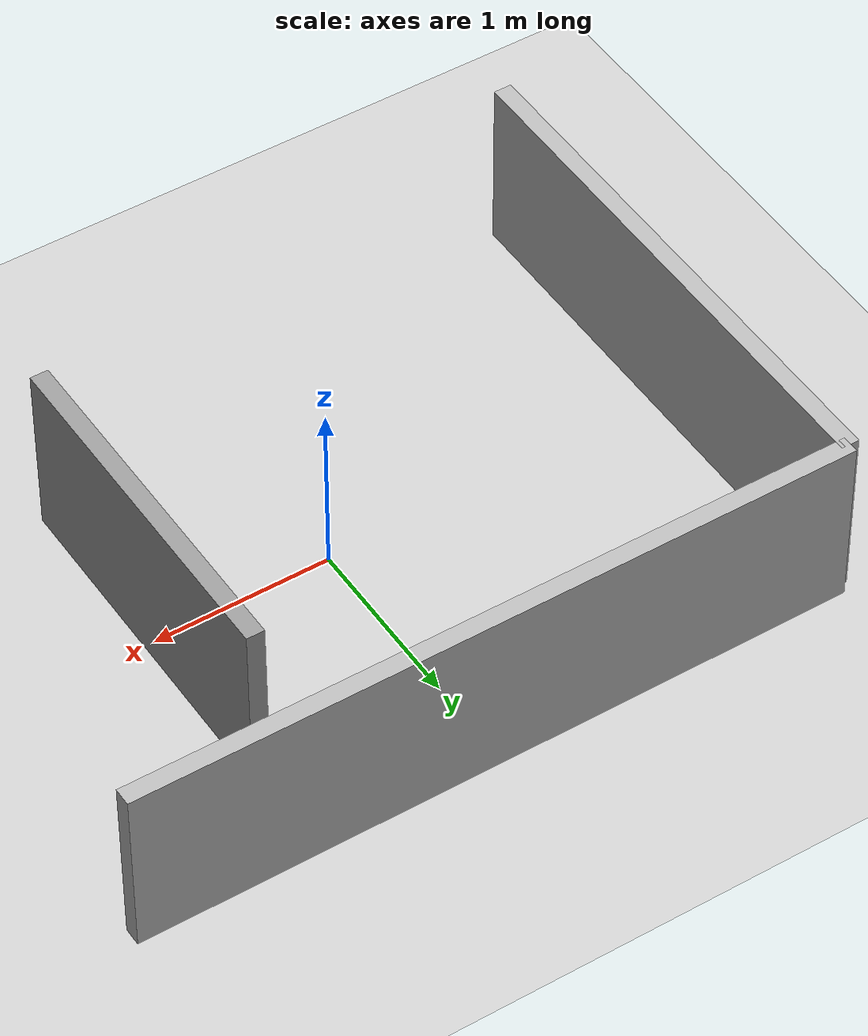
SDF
<?xml version="1.0"?>
<sdf version="1.6">

  <world name="learning_world">

    <!-- 复用 Gazebo 提供的地面 -->
    <include>
      <uri>model://ground_plane</uri>
    </include>

    <!-- 复用 Gazebo 提供的光源 -->
    <include>
      <uri>model://sun</uri>
    </include>

    <!-- 小车前方的墙 -->
    <model name="front_wall">
      <static>true</static>

      <!-- x y z roll pitch yaw -->
      <pose>1.0 0 0.5 0 0 0</pose>

      <link name="wall_link">

        <collision name="wall_collision">
          <geometry>
            <box>
              <size>0.10 2.0 1.0</size>
            </box>
          </geometry>
        </collision>

        <visual name="wall_visual">
          <geometry>
            <box>
              <size>0.10 2.0 1.0</size>
            </box>
          </geometry>

          <material>
            <ambient>0.6 0.6 0.6 1</ambient>
            <diffuse>0.6 0.6 0.6 1</diffuse>
          </material>
        </visual>

      </link>
    </model>
<model name="side_wall">
  <static>true</static>
  <pose>0 1.5 0.5 0 0 0</pose>

  <link name="wall_link">
    <collision name="collision">
      <geometry>
        <box><size>4.0 0.1 1.0</size></box>
      </geometry>
    </collision>

    <visual name="visual">
      <geometry>
        <box><size>4.0 0.1 1.0</size></box>
      </geometry>
    </visual>
  </link>
</model>
<model name="back_wall">
  <static>true</static>
  <pose>-2.0 0 0.5 0 0 0</pose>

  <link name="wall_link">
    <collision name="collision">
      <geometry>
        <box><size>0.1 3.0 1.0</size></box>
      </geometry>
    </collision>

    <visual name="visual">
      <geometry>
        <box><size>0.1 3.0 1.0</size></box>
      </geometry>
    </visual>
  </link>
</model>
  </world>

</sdf>
